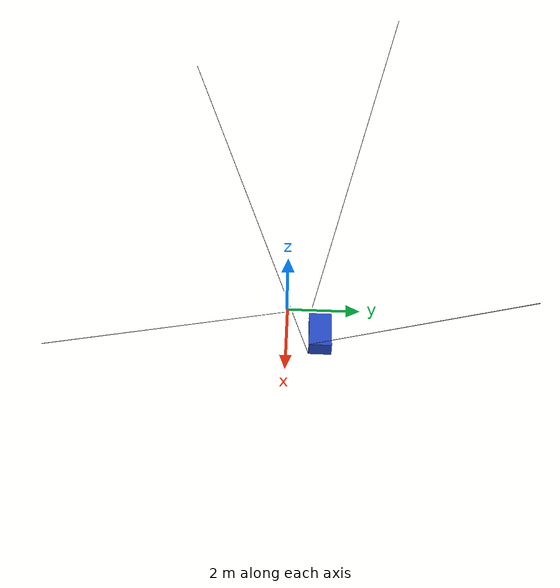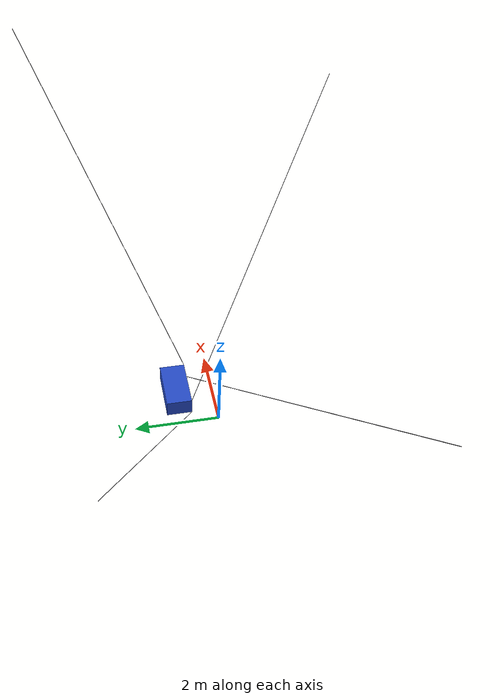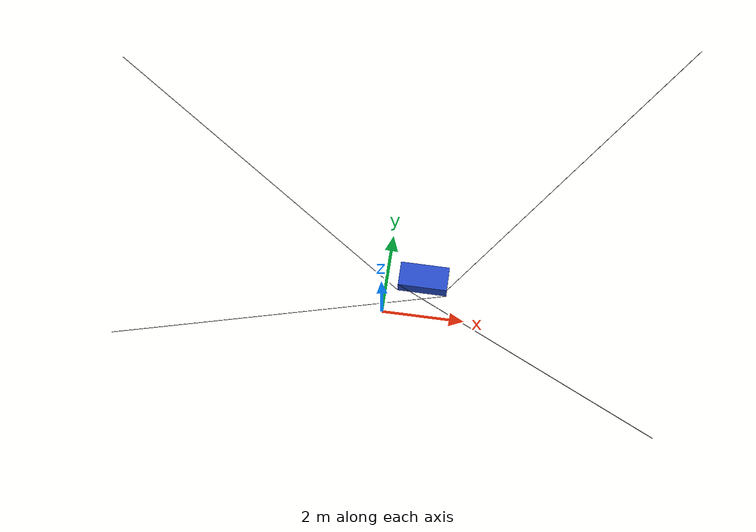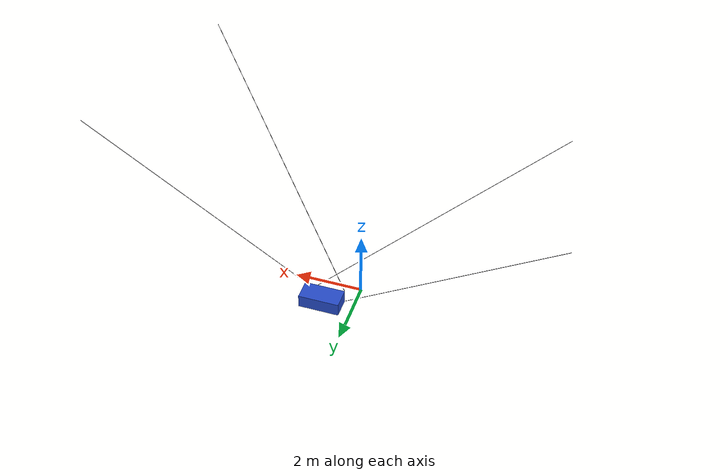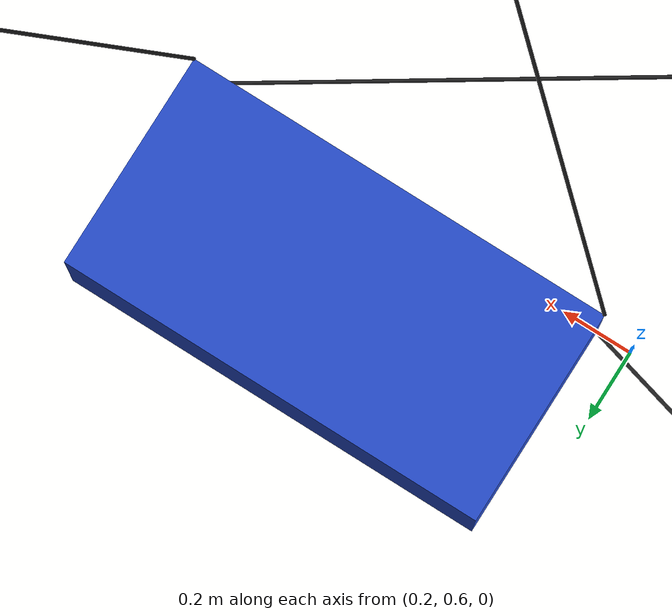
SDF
<?xml version="1.0"?>
<sdf version="1.4">
  <model name="surabaya">
    <!--Definition of the robot frame-->
    <link name="frame">
      <pose>0 0 0 0 0 0</pose>
      <inertial>
        <inertia>
          <ixx>100000</ixx>
          <iyy>100000</iyy>
          <izz>100000</izz>
          <ixy>0</ixy>
          <ixz>0</ixz>
          <iyz>0</iyz>
        </inertia>
        <mass>100000</mass>
      </inertial>
    </link>
    <!--Definition of the robot cables-->
    <!--Definition of the robot platform-->
    <link name="platform">
      <pose>0.900000 0.900000 0.200000 0.000000 0.000000 0.000000</pose>
      <visual name="visualpf">
        <geometry>
          <box>
            <size>1.200000 0.600000 0.400000</size>
          </box>
        </geometry>
        <material>
          <script>
            <uri>file://media/materials/scripts/kitchen.material</uri>
            <name>Gazebo/Blue</name>
          </script>
        </material>
      </visual>
      <collision name="collisionpf">
        <geometry>
          <box>
            <size>1.200000 0.600000 0.400000</size>
          </box>
        </geometry>
      </collision>
      <inertial>
        <inertia>
          <ixx>100.0</ixx>
          <iyy>100.0</iyy>
          <izz>100.0</izz>
          <ixy>0.0</ixy>
          <ixz>0.0</ixz>
          <iyz>0.0</iyz>
        </inertia>
        <mass>100</mass>
      </inertial>
    </link>
    <link name="cable0">
      <pose>-1.809183 -1.120775 2.316428 -2.502679 0.853663 -1.883915</pose>
      <visual name="visual">
        <geometry>
          <cylinder>
            <radius>0.005</radius>
            <length>8.781252758006683</length>
          </cylinder>
        </geometry>
        <material>
          <script>
            <uri>file://media/materials/scripts/kitchen.material</uri>
            <name>Gazebo/Black</name>
          </script>
        </material>
      </visual>
      <inertial>
        <inertia>
          <ixx>0.001</ixx>
          <iyy>0.001</iyy>
          <izz>0.001</izz>
          <ixy>0</ixy>
          <ixz>0</ixz>
          <iyz>0</iyz>
        </inertia>
        <mass>0.001</mass>
      </inertial>
    </link>
    <link name="virt_X0">
      <inertial>
        <inertia>
          <ixx>0.001</ixx>
          <iyy>0.001</iyy>
          <izz>0.001</izz>
          <ixy>0</ixy>
          <ixz>0</ixz>
          <iyz>0</iyz>
        </inertia>
        <mass>0.001</mass>
      </inertial>
      <pose>-3.500000 -2.000000 3.500000 -2.502679 0.853663 -1.883915</pose>
    </link>
    <joint name="rev_X0" type="revolute">
      <pose>0 0 0 -2.502679 0.853663 -1.883915</pose>
      <parent>frame</parent>
      <child>virt_X0</child>
      <axis>
        <xyz>-0.202444 -0.625271 -0.753693</xyz>
        <limit>
          <effort>1000</effort>
          <velocity>10</velocity>
        </limit>
        <dynamics>
          <damping>0.01</damping>
        </dynamics>
      </axis>
    </joint>
    <link name="virt_Y0">
      <inertial>
        <inertia>
          <ixx>0.001</ixx>
          <iyy>0.001</iyy>
          <izz>0.001</izz>
          <ixy>0</ixy>
          <ixz>0</ixz>
          <iyz>0</iyz>
        </inertia>
        <mass>0.001</mass>
      </inertial>
      <pose>-3.500000 -2.000000 3.500000 -2.502679 0.853663 -1.883915</pose>
    </link>
    <joint name="rev_Y0" type="revolute">
      <pose>0 0 0 -2.502679 0.853663 -1.883915</pose>
      <parent>virt_X0</parent>
      <child>virt_Y0</child>
      <axis>
        <xyz>-0.625271 0.674859 -0.391920</xyz>
        <limit>
          <effort>1000</effort>
          <velocity>10</velocity>
        </limit>
        <dynamics>
          <damping>0.01</damping>
        </dynamics>
      </axis>
    </joint>
    <joint name="cable0" type="prismatic">
      <pose>0 0 -1.484749 -2.502679 0.853663 -1.883915</pose>
      <parent>virt_Y0</parent>
      <child>cable0</child>
      <axis>
        <xyz>-0.753693 -0.391920 0.527585</xyz>
        <limit>
          <lower>-4.390626379003342</lower>
          <upper>4.390626379003342</upper>
          <effort>10000</effort>
          <velocity>10</velocity>
        </limit>
        <dynamics>
          <damping>1</damping>
        </dynamics>
      </axis>
    </joint>
    <link name="virt_Xpf0">
      <inertial>
        <inertia>
          <ixx>0.001</ixx>
          <iyy>0.001</iyy>
          <izz>0.001</izz>
          <ixy>0</ixy>
          <ixz>0</ixz>
          <iyz>0</iyz>
        </inertia>
        <mass>0.001</mass>
      </inertial>
      <pose>1.500000 0.600000 0.000000 -2.502679 0.853663 -1.883915</pose>
    </link>
    <joint name="rev_Xpf0" type="revolute">
      <pose>0 0 0 -2.502679 0.853663 -1.883915</pose>
      <parent>platform</parent>
      <child>virt_Xpf0</child>
      <axis>
        <xyz>1 0 0</xyz>
        <limit>
          <effort>1000</effort>
          <velocity>10</velocity>
        </limit>
        <dynamics>
          <damping>0.01</damping>
        </dynamics>
      </axis>
    </joint>
    <link name="virt_Ypf0">
      <inertial>
        <inertia>
          <ixx>0.001</ixx>
          <iyy>0.001</iyy>
          <izz>0.001</izz>
          <ixy>0</ixy>
          <ixz>0</ixz>
          <iyz>0</iyz>
        </inertia>
        <mass>0.001</mass>
      </inertial>
      <pose>1.500000 0.600000 0.000000 -2.502679 0.853663 -1.883915</pose>
    </link>
    <joint name="rev_Ypf0" type="revolute">
      <pose>0 0 0 -2.502679 0.853663 -1.883915</pose>
      <parent>virt_Xpf0</parent>
      <child>virt_Ypf0</child>
      <axis>
        <xyz>0 1 0</xyz>
        <limit>
          <effort>1000</effort>
          <velocity>10</velocity>
        </limit>
        <dynamics>
          <damping>0.01</damping>
        </dynamics>
      </axis>
    </joint>
    <joint name="rev_Zpf0" type="revolute">
      <pose>0 0 0 -2.502679 0.853663 -1.883915</pose>
      <child>virt_Ypf0</child>
      <parent>cable0</parent>
      <axis>
        <xyz>0 0 1</xyz>
        <limit>
          <effort>1000</effort>
          <velocity>10</velocity>
        </limit>
        <dynamics>
          <damping>0.01</damping>
        </dynamics>
      </axis>
    </joint>
    <link name="cable1">
      <pose>3.023667 -1.612980 3.038552 -2.443690 -0.669172 1.525312</pose>
      <visual name="visual">
        <geometry>
          <cylinder>
            <radius>0.005</radius>
            <length>8.781252758006683</length>
          </cylinder>
        </geometry>
        <material>
          <script>
            <uri>file://media/materials/scripts/kitchen.material</uri>
            <name>Gazebo/Black</name>
          </script>
        </material>
      </visual>
      <inertial>
        <inertia>
          <ixx>0.001</ixx>
          <iyy>0.001</iyy>
          <izz>0.001</izz>
          <ixy>0</ixy>
          <ixz>0</ixz>
          <iyz>0</iyz>
        </inertia>
        <mass>0.001</mass>
      </inertial>
    </link>
    <link name="virt_X1">
      <inertial>
        <inertia>
          <ixx>0.001</ixx>
          <iyy>0.001</iyy>
          <izz>0.001</izz>
          <ixy>0</ixy>
          <ixz>0</ixz>
          <iyz>0</iyz>
        </inertia>
        <mass>0.001</mass>
      </inertial>
      <pose>3.500000 -2.000000 3.500000 -2.443690 -0.669172 1.525312</pose>
    </link>
    <joint name="rev_X1" type="revolute">
      <pose>0 0 0 -2.443690 -0.669172 1.525312</pose>
      <parent>frame</parent>
      <child>virt_X1</child>
      <axis>
        <xyz>0.035662 0.783524 0.620337</xyz>
        <limit>
          <effort>1000</effort>
          <velocity>10</velocity>
        </limit>
        <dynamics>
          <damping>0.01</damping>
        </dynamics>
      </axis>
    </joint>
    <link name="virt_Y1">
      <inertial>
        <inertia>
          <ixx>0.001</ixx>
          <iyy>0.001</iyy>
          <izz>0.001</izz>
          <ixy>0</ixy>
          <ixz>0</ixz>
          <iyz>0</iyz>
        </inertia>
        <mass>0.001</mass>
      </inertial>
      <pose>3.500000 -2.000000 3.500000 -2.443690 -0.669172 1.525312</pose>
    </link>
    <joint name="rev_Y1" type="revolute">
      <pose>0 0 0 -2.443690 -0.669172 1.525312</pose>
      <parent>virt_X1</parent>
      <child>virt_Y1</child>
      <axis>
        <xyz>0.783524 0.363386 -0.504024</xyz>
        <limit>
          <effort>1000</effort>
          <velocity>10</velocity>
        </limit>
        <dynamics>
          <damping>0.01</damping>
        </dynamics>
      </axis>
    </joint>
    <joint name="cable1" type="prismatic">
      <pose>0 0 -0.653562 -2.443690 -0.669172 1.525312</pose>
      <parent>virt_Y1</parent>
      <child>cable1</child>
      <axis>
        <xyz>0.620337 -0.504024 0.600951</xyz>
        <limit>
          <lower>-4.390626379003342</lower>
          <upper>4.390626379003342</upper>
          <effort>10000</effort>
          <velocity>10</velocity>
        </limit>
        <dynamics>
          <damping>1</damping>
        </dynamics>
      </axis>
    </joint>
    <link name="virt_Xpf1">
      <inertial>
        <inertia>
          <ixx>0.001</ixx>
          <iyy>0.001</iyy>
          <izz>0.001</izz>
          <ixy>0</ixy>
          <ixz>0</ixz>
          <iyz>0</iyz>
        </inertia>
        <mass>0.001</mass>
      </inertial>
      <pose>0.300000 0.600000 0.400000 -2.443690 -0.669172 1.525312</pose>
    </link>
    <joint name="rev_Xpf1" type="revolute">
      <pose>0 0 0 -2.443690 -0.669172 1.525312</pose>
      <parent>platform</parent>
      <child>virt_Xpf1</child>
      <axis>
        <xyz>1 0 0</xyz>
        <limit>
          <effort>1000</effort>
          <velocity>10</velocity>
        </limit>
        <dynamics>
          <damping>0.01</damping>
        </dynamics>
      </axis>
    </joint>
    <link name="virt_Ypf1">
      <inertial>
        <inertia>
          <ixx>0.001</ixx>
          <iyy>0.001</iyy>
          <izz>0.001</izz>
          <ixy>0</ixy>
          <ixz>0</ixz>
          <iyz>0</iyz>
        </inertia>
        <mass>0.001</mass>
      </inertial>
      <pose>0.300000 0.600000 0.400000 -2.443690 -0.669172 1.525312</pose>
    </link>
    <joint name="rev_Ypf1" type="revolute">
      <pose>0 0 0 -2.443690 -0.669172 1.525312</pose>
      <parent>virt_Xpf1</parent>
      <child>virt_Ypf1</child>
      <axis>
        <xyz>0 1 0</xyz>
        <limit>
          <effort>1000</effort>
          <velocity>10</velocity>
        </limit>
        <dynamics>
          <damping>0.01</damping>
        </dynamics>
      </axis>
    </joint>
    <joint name="rev_Zpf1" type="revolute">
      <pose>0 0 0 -2.443690 -0.669172 1.525312</pose>
      <child>virt_Ypf1</child>
      <parent>cable1</parent>
      <axis>
        <xyz>0 0 1</xyz>
        <limit>
          <effort>1000</effort>
          <velocity>10</velocity>
        </limit>
        <dynamics>
          <damping>0.01</damping>
        </dynamics>
      </axis>
    </joint>
    <link name="cable2">
      <pose>-2.817079 1.748397 2.870994 2.761086 0.789412 2.275508</pose>
      <visual name="visual">
        <geometry>
          <cylinder>
            <radius>0.005</radius>
            <length>8.781252758006683</length>
          </cylinder>
        </geometry>
        <material>
          <script>
            <uri>file://media/materials/scripts/kitchen.material</uri>
            <name>Gazebo/Black</name>
          </script>
        </material>
      </visual>
      <inertial>
        <inertia>
          <ixx>0.001</ixx>
          <iyy>0.001</iyy>
          <izz>0.001</izz>
          <ixy>0</ixy>
          <ixz>0</ixz>
          <iyz>0</iyz>
        </inertia>
        <mass>0.001</mass>
      </inertial>
    </link>
    <link name="virt_X2">
      <inertial>
        <inertia>
          <ixx>0.001</ixx>
          <iyy>0.001</iyy>
          <izz>0.001</izz>
          <ixy>0</ixy>
          <ixz>0</ixz>
          <iyz>0</iyz>
        </inertia>
        <mass>0.001</mass>
      </inertial>
      <pose>-3.500000 2.000000 3.500000 2.761086 0.789412 2.275508</pose>
    </link>
    <joint name="rev_X2" type="revolute">
      <pose>0 0 0 2.761086 0.789412 2.275508</pose>
      <parent>frame</parent>
      <child>virt_X2</child>
      <axis>
        <xyz>-0.456231 0.536506 -0.709939</xyz>
        <limit>
          <effort>1000</effort>
          <velocity>10</velocity>
        </limit>
        <dynamics>
          <damping>0.01</damping>
        </dynamics>
      </axis>
    </joint>
    <link name="virt_Y2">
      <inertial>
        <inertia>
          <ixx>0.001</ixx>
          <iyy>0.001</iyy>
          <izz>0.001</izz>
          <ixy>0</ixy>
          <ixz>0</ixz>
          <iyz>0</iyz>
        </inertia>
        <mass>0.001</mass>
      </inertial>
      <pose>-3.500000 2.000000 3.500000 2.761086 0.789412 2.275508</pose>
    </link>
    <joint name="rev_Y2" type="revolute">
      <pose>0 0 0 2.761086 0.789412 2.275508</pose>
      <parent>virt_X2</parent>
      <child>virt_Y2</child>
      <axis>
        <xyz>0.536506 0.802340 0.261557</xyz>
        <limit>
          <effort>1000</effort>
          <velocity>10</velocity>
        </limit>
        <dynamics>
          <damping>0.01</damping>
        </dynamics>
      </axis>
    </joint>
    <joint name="cable2" type="prismatic">
      <pose>0 0 -0.789066 2.761086 0.789412 2.275508</pose>
      <parent>virt_Y2</parent>
      <child>cable2</child>
      <axis>
        <xyz>-0.709939 0.261557 0.653892</xyz>
        <limit>
          <lower>-4.390626379003342</lower>
          <upper>4.390626379003342</upper>
          <effort>10000</effort>
          <velocity>10</velocity>
        </limit>
        <dynamics>
          <damping>1</damping>
        </dynamics>
      </axis>
    </joint>
    <link name="virt_Xpf2">
      <inertial>
        <inertia>
          <ixx>0.001</ixx>
          <iyy>0.001</iyy>
          <izz>0.001</izz>
          <ixy>0</ixy>
          <ixz>0</ixz>
          <iyz>0</iyz>
        </inertia>
        <mass>0.001</mass>
      </inertial>
      <pose>0.300000 0.600000 0.000000 2.761086 0.789412 2.275508</pose>
    </link>
    <joint name="rev_Xpf2" type="revolute">
      <pose>0 0 0 2.761086 0.789412 2.275508</pose>
      <parent>platform</parent>
      <child>virt_Xpf2</child>
      <axis>
        <xyz>1 0 0</xyz>
        <limit>
          <effort>1000</effort>
          <velocity>10</velocity>
        </limit>
        <dynamics>
          <damping>0.01</damping>
        </dynamics>
      </axis>
    </joint>
    <link name="virt_Ypf2">
      <inertial>
        <inertia>
          <ixx>0.001</ixx>
          <iyy>0.001</iyy>
          <izz>0.001</izz>
          <ixy>0</ixy>
          <ixz>0</ixz>
          <iyz>0</iyz>
        </inertia>
        <mass>0.001</mass>
      </inertial>
      <pose>0.300000 0.600000 0.000000 2.761086 0.789412 2.275508</pose>
    </link>
    <joint name="rev_Ypf2" type="revolute">
      <pose>0 0 0 2.761086 0.789412 2.275508</pose>
      <parent>virt_Xpf2</parent>
      <child>virt_Ypf2</child>
      <axis>
        <xyz>0 1 0</xyz>
        <limit>
          <effort>1000</effort>
          <velocity>10</velocity>
        </limit>
        <dynamics>
          <damping>0.01</damping>
        </dynamics>
      </axis>
    </joint>
    <joint name="rev_Zpf2" type="revolute">
      <pose>0 0 0 2.761086 0.789412 2.275508</pose>
      <child>virt_Ypf2</child>
      <parent>cable2</parent>
      <axis>
        <xyz>0 0 1</xyz>
        <limit>
          <effort>1000</effort>
          <velocity>10</velocity>
        </limit>
        <dynamics>
          <damping>0.01</damping>
        </dynamics>
      </axis>
    </joint>
    <link name="cable3">
      <pose>3.725421 2.157795 3.849402 2.717398 -0.531535 -1.803043</pose>
      <visual name="visual">
        <geometry>
          <cylinder>
            <radius>0.005</radius>
            <length>8.781252758006683</length>
          </cylinder>
        </geometry>
        <material>
          <script>
            <uri>file://media/materials/scripts/kitchen.material</uri>
            <name>Gazebo/Black</name>
          </script>
        </material>
      </visual>
      <inertial>
        <inertia>
          <ixx>0.001</ixx>
          <iyy>0.001</iyy>
          <izz>0.001</izz>
          <ixy>0</ixy>
          <ixz>0</ixz>
          <iyz>0</iyz>
        </inertia>
        <mass>0.001</mass>
      </inertial>
    </link>
    <link name="virt_X3">
      <inertial>
        <inertia>
          <ixx>0.001</ixx>
          <iyy>0.001</iyy>
          <izz>0.001</izz>
          <ixy>0</ixy>
          <ixz>0</ixz>
          <iyz>0</iyz>
        </inertia>
        <mass>0.001</mass>
      </inertial>
      <pose>3.500000 2.000000 3.500000 2.717398 -0.531535 -1.803043</pose>
    </link>
    <joint name="rev_X3" type="revolute">
      <pose>0 0 0 2.717398 -0.531535 -1.803043</pose>
      <parent>frame</parent>
      <child>virt_X3</child>
      <axis>
        <xyz>-0.198409 -0.838886 0.506857</xyz>
        <limit>
          <effort>1000</effort>
          <velocity>10</velocity>
        </limit>
        <dynamics>
          <damping>0.01</damping>
        </dynamics>
      </axis>
    </joint>
    <link name="virt_Y3">
      <inertial>
        <inertia>
          <ixx>0.001</ixx>
          <iyy>0.001</iyy>
          <izz>0.001</izz>
          <ixy>0</ixy>
          <ixz>0</ixz>
          <iyz>0</iyz>
        </inertia>
        <mass>0.001</mass>
      </inertial>
      <pose>3.500000 2.000000 3.500000 2.717398 -0.531535 -1.803043</pose>
    </link>
    <joint name="rev_Y3" type="revolute">
      <pose>0 0 0 2.717398 -0.531535 -1.803043</pose>
      <parent>virt_X3</parent>
      <child>virt_Y3</child>
      <axis>
        <xyz>-0.838886 0.412780 0.354800</xyz>
        <limit>
          <effort>1000</effort>
          <velocity>10</velocity>
        </limit>
        <dynamics>
          <damping>0.01</damping>
        </dynamics>
      </axis>
    </joint>
    <joint name="cable3" type="prismatic">
      <pose>0 0 0.494870 2.717398 -0.531535 -1.803043</pose>
      <parent>virt_Y3</parent>
      <child>cable3</child>
      <axis>
        <xyz>0.506857 0.354800 0.785629</xyz>
        <limit>
          <lower>-4.390626379003342</lower>
          <upper>4.390626379003342</upper>
          <effort>10000</effort>
          <velocity>10</velocity>
        </limit>
        <dynamics>
          <damping>1</damping>
        </dynamics>
      </axis>
    </joint>
    <link name="virt_Xpf3">
      <inertial>
        <inertia>
          <ixx>0.001</ixx>
          <iyy>0.001</iyy>
          <izz>0.001</izz>
          <ixy>0</ixy>
          <ixz>0</ixz>
          <iyz>0</iyz>
        </inertia>
        <mass>0.001</mass>
      </inertial>
      <pose>1.500000 0.600000 0.400000 2.717398 -0.531535 -1.803043</pose>
    </link>
    <joint name="rev_Xpf3" type="revolute">
      <pose>0 0 0 2.717398 -0.531535 -1.803043</pose>
      <parent>platform</parent>
      <child>virt_Xpf3</child>
      <axis>
        <xyz>1 0 0</xyz>
        <limit>
          <effort>1000</effort>
          <velocity>10</velocity>
        </limit>
        <dynamics>
          <damping>0.01</damping>
        </dynamics>
      </axis>
    </joint>
    <link name="virt_Ypf3">
      <inertial>
        <inertia>
          <ixx>0.001</ixx>
          <iyy>0.001</iyy>
          <izz>0.001</izz>
          <ixy>0</ixy>
          <ixz>0</ixz>
          <iyz>0</iyz>
        </inertia>
        <mass>0.001</mass>
      </inertial>
      <pose>1.500000 0.600000 0.400000 2.717398 -0.531535 -1.803043</pose>
    </link>
    <joint name="rev_Ypf3" type="revolute">
      <pose>0 0 0 2.717398 -0.531535 -1.803043</pose>
      <parent>virt_Xpf3</parent>
      <child>virt_Ypf3</child>
      <axis>
        <xyz>0 1 0</xyz>
        <limit>
          <effort>1000</effort>
          <velocity>10</velocity>
        </limit>
        <dynamics>
          <damping>0.01</damping>
        </dynamics>
      </axis>
    </joint>
    <joint name="rev_Zpf3" type="revolute">
      <pose>0 0 0 2.717398 -0.531535 -1.803043</pose>
      <child>virt_Ypf3</child>
      <parent>cable3</parent>
      <axis>
        <xyz>0 0 1</xyz>
        <limit>
          <effort>1000</effort>
          <velocity>10</velocity>
        </limit>
        <dynamics>
          <damping>0.01</damping>
        </dynamics>
      </axis>
    </joint>
    <plugin name="cdpr_gazebo_plugin" filename="libcdpr_gazebo_plugin.so"/>
  </model>
</sdf>
